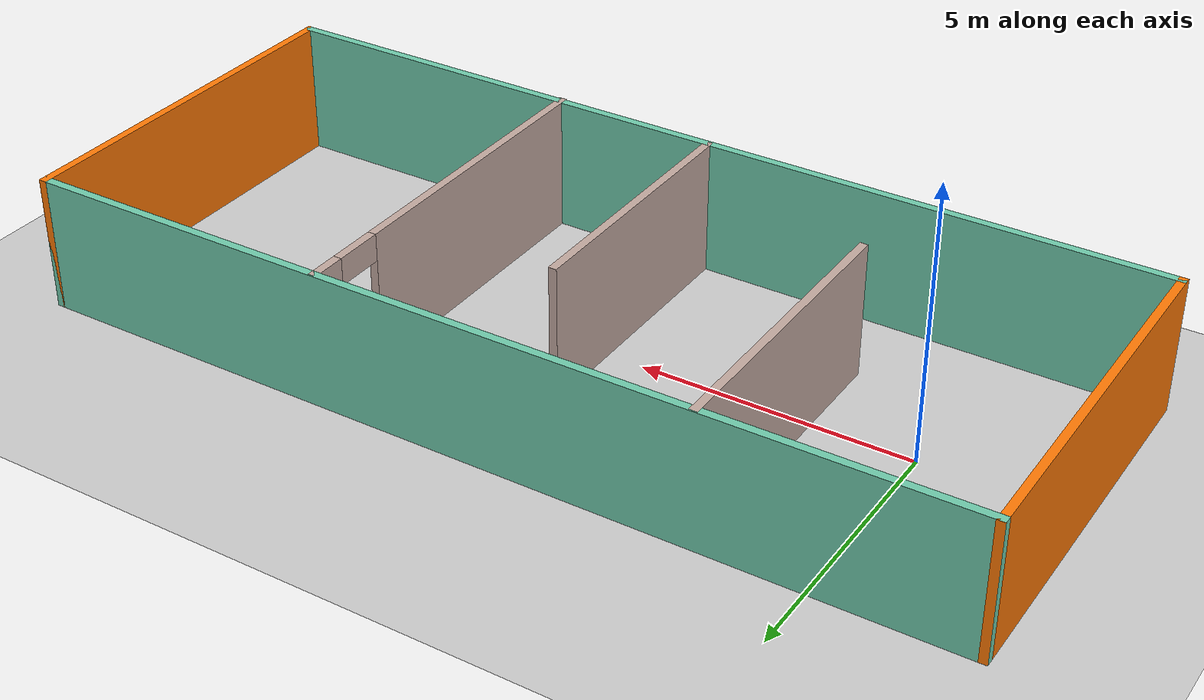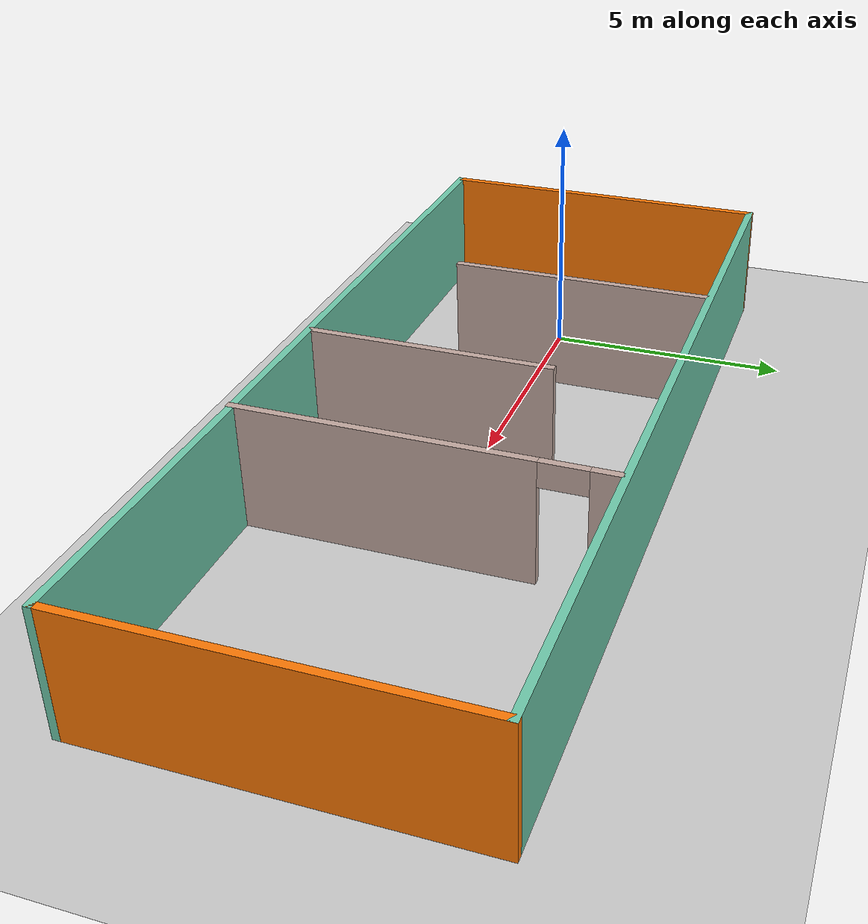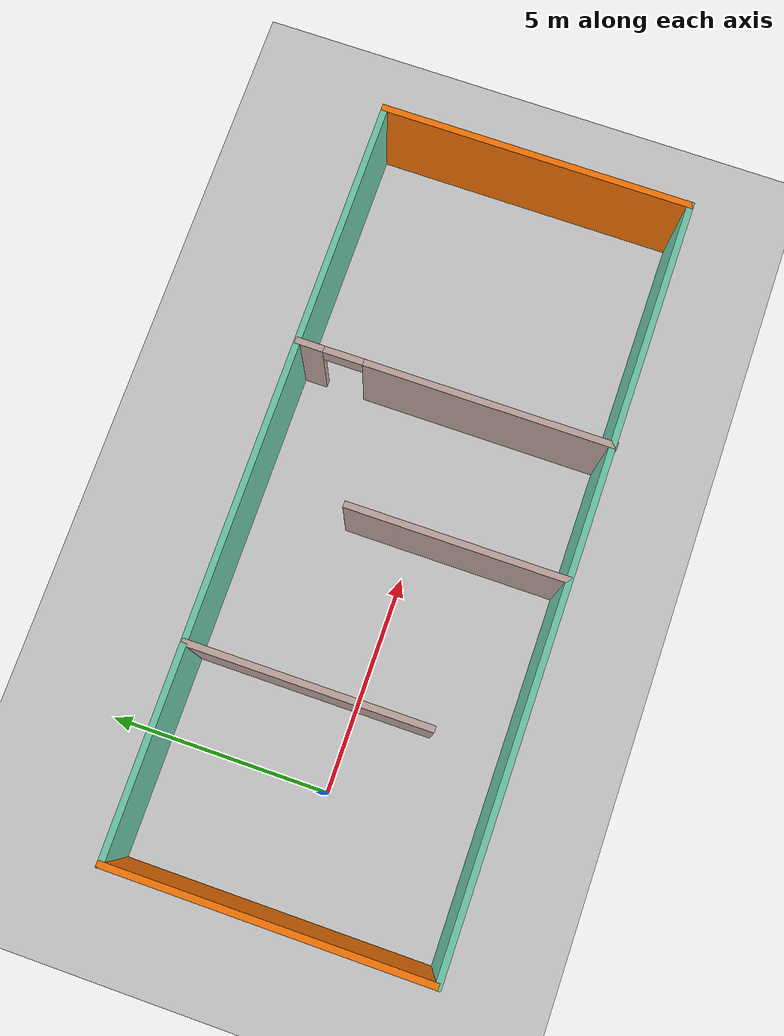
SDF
<sdf version="1.6">
 <world name="default">
  <light name="sun" type="directional">
   <pose>0 0 10 0 -0 0</pose>
   <diffuse>0.8 0.8 0.8 1</diffuse>
   <specular>0.2 0.2 0.2 1</specular>
   <attenuation>
    <range>1000</range>
    <constant>0.9</constant>
    <linear>0.01</linear>
    <quadratic>0.001</quadratic>
   </attenuation>
   <direction>-0.5 0.1 -0.9</direction>
  </light>
  <model name="ground_plane">
   <static>1</static>
   <link name="link">
    <collision name="collision">
     <geometry><plane><normal>0 0 1</normal><size>100 100</size></plane></geometry>
     <surface>
      <contact><collide_bitmask>65535</collide_bitmask></contact>
      <friction><ode><mu>100</mu><mu2>50</mu2></ode></friction>
     </surface>
    </collision>
    <visual name="visual">
     <cast_shadows>0</cast_shadows>
     <geometry><plane><normal>0 0 1</normal><size>100 100</size></plane></geometry>
     <material>
      <script><uri>file://media/materials/scripts/gazebo.material</uri><name>Gazebo/Grey</name></script>
     </material>
    </visual>
   </link>
  </model>
  <gravity>0 0 -9.8</gravity>
  <magnetic_field>6e-06 2.3e-05 -4.2e-05</magnetic_field>
  <atmosphere type="adiabatic"/>
  <physics name="default_physics" default="0" type="ode">
   <max_step_size>0.001</max_step_size>
   <real_time_factor>1</real_time_factor>
   <real_time_update_rate>1000</real_time_update_rate>
  </physics>
  <scene><ambient>0.4 0.4 0.4 1</ambient><background>0.7 0.7 0.7 1</background><shadows>1</shadows></scene>
  <spherical_coordinates>
   <surface_model>EARTH_WGS84</surface_model>
   <latitude_deg>0</latitude_deg>
   <longitude_deg>0</longitude_deg>
   <elevation>0</elevation>
   <heading_deg>0</heading_deg>
  </spherical_coordinates>
  <model name="simplest_world">
   <pose>5.90731 0.146302 0 0 -0 0</pose>
   <link name="Wall_10">
    <collision name="Wall_10_Collision">
     <geometry><box><size>7.25 0.15 2.5</size></box></geometry>
     <pose>0 0 1.25 0 -0 0</pose>
    </collision>
    <visual name="Wall_10_Visual">
     <pose>0 0 1.25 0 -0 0</pose>
     <geometry><box><size>7.25 0.15 2.5</size></box></geometry>
     <material>
      <script><uri>file://media/materials/scripts/gazebo.material</uri><name>Gazebo/Grey</name></script>
      <ambient>0.996078 0.47451 0.0196078 1</ambient>
     </material>
     <meta><layer>0</layer></meta>
    </visual>
    <pose>8.675 0.012311 0 0 0 -1.5708</pose>
   </link>
   <link name="Wall_11">
    <collision name="Wall_11_Collision">
     <geometry><box><size>17.5 0.15 2.5</size></box></geometry>
     <pose>0 0 1.25 0 -0 0</pose>
    </collision>
    <visual name="Wall_11_Visual">
     <pose>0 0 1.25 0 -0 0</pose>
     <geometry><box><size>17.5 0.15 2.5</size></box></geometry>
     <material>
      <script><uri>file://media/materials/scripts/gazebo.material</uri><name>Gazebo/Grey</name></script>
      <ambient>0.435294 0.796078 0.67451 1</ambient>
     </material>
     <meta><layer>0</layer></meta>
    </visual>
    <pose>0 -3.53769 0 0 -0 3.14159</pose>
   </link>
   <link name="Wall_13">
    <collision name="Wall_13_Collision">
     <geometry><box><size>5.5 0.15 2.5</size></box></geometry>
     <pose>0 0 1.25 0 -0 0</pose>
    </collision>
    <visual name="Wall_13_Visual">
     <pose>0 0 1.25 0 -0 0</pose>
     <geometry><box><size>5.5 0.15 2.5</size></box></geometry>
     <material>
      <script><uri>file://media/materials/scripts/gazebo.material</uri><name>Gazebo/Grey</name></script>
      <ambient>0.760784 0.662745 0.627451 1</ambient>
     </material>
     <meta><layer>0</layer></meta>
    </visual>
    <pose>-3.97198 0.862689 0 0 0 -1.5708</pose>
   </link>
   <link name="Wall_15">
    <collision name="Wall_15_Collision">
     <geometry><box><size>5 0.15 2.5</size></box></geometry>
     <pose>0 0 1.25 0 -0 0</pose>
    </collision>
    <visual name="Wall_15_Visual">
     <pose>0 0 1.25 0 -0 0</pose>
     <geometry><box><size>5 0.15 2.5</size></box></geometry>
     <material>
      <script><uri>file://media/materials/scripts/gazebo.material</uri><name>Gazebo/Grey</name></script>
      <ambient>0.760784 0.662745 0.627451 1</ambient>
     </material>
     <meta><layer>0</layer></meta>
    </visual>
    <pose>-0.157024 -1.07394 0 0 0 -1.5708</pose>
   </link>
   <link name="Wall_19">
    <pose>2.91356 -0.012311 0 0 0 -1.5708</pose>
    <visual name="Wall_19_Visual_0">
     <pose>-3.30074 0 1.25 0 -0 0</pose>
     <geometry><box><size>0.648526 0.15 2.5</size></box></geometry>
     <material>
      <script><uri>file://media/materials/scripts/gazebo.material</uri><name>Gazebo/Grey</name></script>
      <ambient>0.760784 0.662745 0.627451 1</ambient>
     </material>
     <meta><layer>0</layer></meta>
    </visual>
    <collision name="Wall_19_Collision_0">
     <geometry><box><size>0.648526 0.15 2.5</size></box></geometry>
     <pose>-3.30074 0 1.25 0 -0 0</pose>
    </collision>
    <visual name="Wall_19_Visual_1">
     <pose>0.774263 0 1.25 0 -0 0</pose>
     <geometry><box><size>5.70147 0.15 2.5</size></box></geometry>
     <material>
      <script><uri>file://media/materials/scripts/gazebo.material</uri><name>Gazebo/Grey</name></script>
      <ambient>0.760784 0.662745 0.627451 1</ambient>
     </material>
     <meta><layer>0</layer></meta>
    </visual>
    <collision name="Wall_19_Collision_1">
     <geometry><box><size>5.70147 0.15 2.5</size></box></geometry>
     <pose>0.774263 0 1.25 0 -0 0</pose>
    </collision>
    <visual name="Wall_19_Visual_2">
     <pose>-2.52647 0 2.25 0 -0 0</pose>
     <geometry><box><size>0.9 0.15 0.5</size></box></geometry>
     <material>
      <script><uri>file://media/materials/scripts/gazebo.material</uri><name>Gazebo/Grey</name></script>
      <ambient>0.760784 0.662745 0.627451 1</ambient>
     </material>
     <meta><layer>0</layer></meta>
    </visual>
    <collision name="Wall_19_Collision_2">
     <geometry><box><size>0.9 0.15 0.5</size></box></geometry>
     <pose>-2.52647 0 2.25 0 -0 0</pose>
    </collision>
   </link>
   <link name="Wall_4">
    <collision name="Wall_4_Collision">
     <geometry><box><size>7.25 0.15 2.5</size></box></geometry>
     <pose>0 0 1.25 0 -0 0</pose>
    </collision>
    <visual name="Wall_4_Visual">
     <pose>0 0 1.25 0 -0 0</pose>
     <geometry><box><size>7.25 0.15 2.5</size></box></geometry>
     <material>
      <script><uri>file://media/materials/scripts/gazebo.material</uri><name>Gazebo/Grey</name></script>
      <ambient>0.996078 0.47451 0.0196078 1</ambient>
     </material>
     <meta><layer>0</layer></meta>
    </visual>
    <pose>-8.675 0.012311 0 0 0 -1.5708</pose>
   </link>
   <link name="Wall_9">
    <collision name="Wall_9_Collision">
     <geometry><box><size>17.5 0.15 2.5</size></box></geometry>
     <pose>0 0 1.25 0 -0 0</pose>
    </collision>
    <visual name="Wall_9_Visual">
     <pose>0 0 1.25 0 -0 0</pose>
     <geometry><box><size>17.5 0.15 2.5</size></box></geometry>
     <material>
      <script><uri>file://media/materials/scripts/gazebo.material</uri><name>Gazebo/Grey</name></script>
      <ambient>0.435294 0.796078 0.67451 1</ambient>
     </material>
     <meta><layer>0</layer></meta>
    </visual>
    <pose>0 3.56231 0 0 -0 0</pose>
   </link>
   <static>1</static>
  </model>
 </world>
</sdf>
